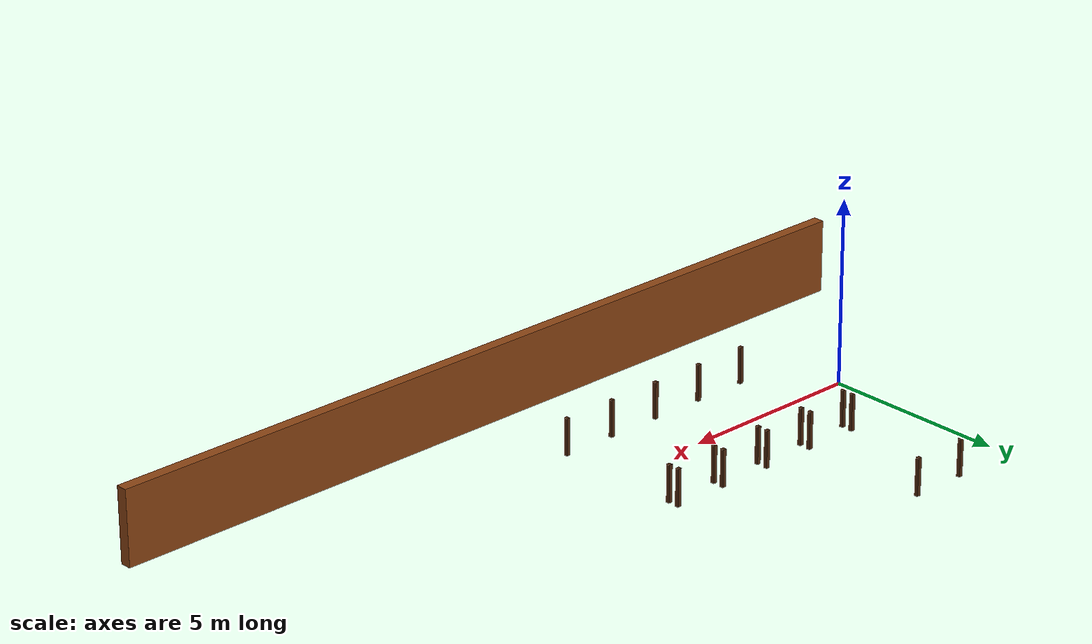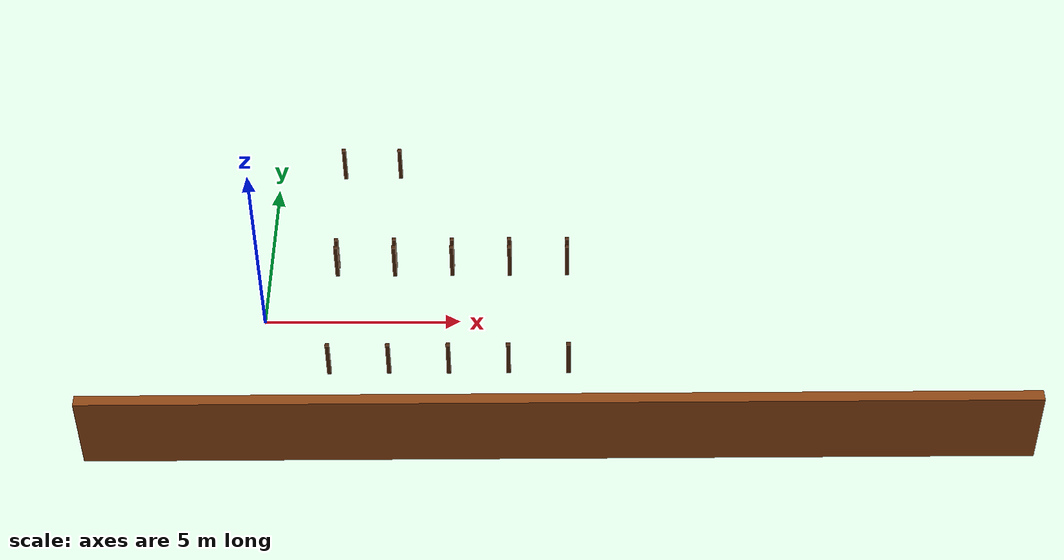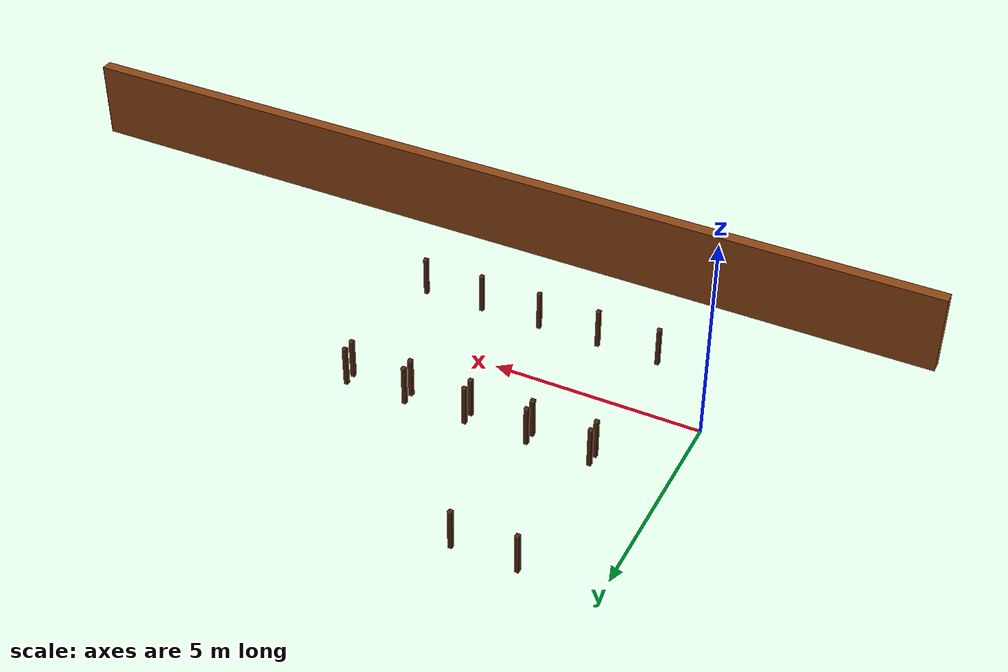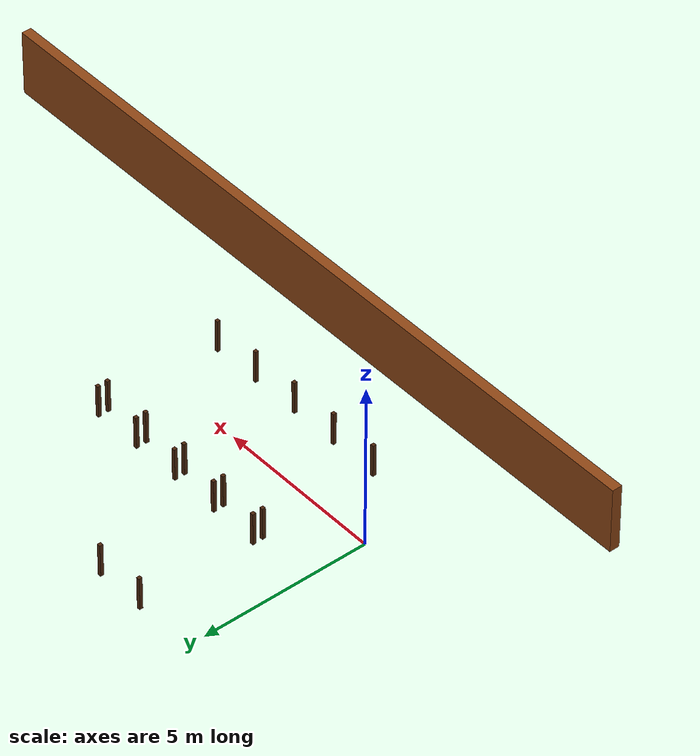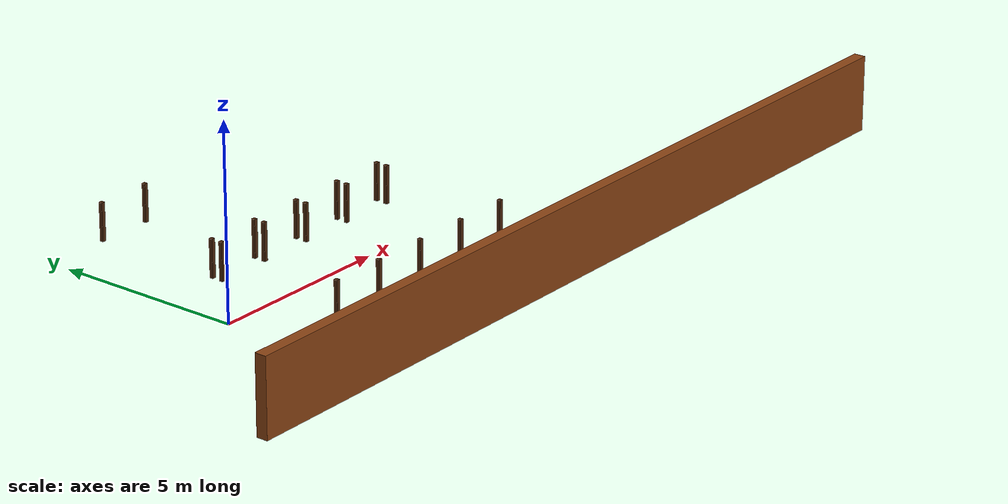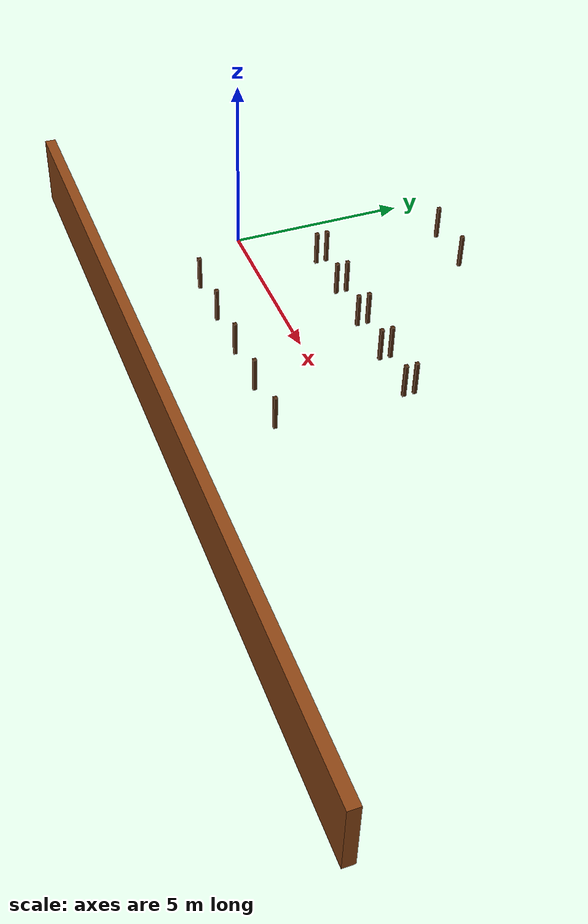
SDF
<sdf version="1.6">
 <world name="terrain_world">
  <model name="lane0_rib_l0">
   <static>true</static>
   <pose>1.7500 1.7500 0.5000 0.00000 0.00000 0.00000</pose>
   <link name="link">
    <collision name="col"><geometry><box><size>0.1000 0.1000 1.0000</size></box></geometry></collision>
    <visual name="vis">
     <geometry><box><size>0.1000 0.1000 1.0000</size></box></geometry>
     <material><ambient>0.30 0.15 0.05 1</ambient><diffuse>0.30 0.15 0.05 1</diffuse></material>
    </visual>
   </link>
  </model>
  <model name="lane0_rib_l1">
   <static>true</static>
   <pose>3.2500 1.7500 0.5000 0.00000 0.00000 0.00000</pose>
   <link name="link">
    <collision name="col"><geometry><box><size>0.1000 0.1000 1.0000</size></box></geometry></collision>
    <visual name="vis">
     <geometry><box><size>0.1000 0.1000 1.0000</size></box></geometry>
     <material><ambient>0.30 0.15 0.05 1</ambient><diffuse>0.30 0.15 0.05 1</diffuse></material>
    </visual>
   </link>
  </model>
  <model name="lane0_rib_l2">
   <static>true</static>
   <pose>4.7500 1.7500 0.5000 0.00000 0.00000 0.00000</pose>
   <link name="link">
    <collision name="col"><geometry><box><size>0.1000 0.1000 1.0000</size></box></geometry></collision>
    <visual name="vis">
     <geometry><box><size>0.1000 0.1000 1.0000</size></box></geometry>
     <material><ambient>0.30 0.15 0.05 1</ambient><diffuse>0.30 0.15 0.05 1</diffuse></material>
    </visual>
   </link>
  </model>
  <model name="lane0_rib_l3">
   <static>true</static>
   <pose>6.2500 1.7500 0.5000 0.00000 0.00000 0.00000</pose>
   <link name="link">
    <collision name="col"><geometry><box><size>0.1000 0.1000 1.0000</size></box></geometry></collision>
    <visual name="vis">
     <geometry><box><size>0.1000 0.1000 1.0000</size></box></geometry>
     <material><ambient>0.30 0.15 0.05 1</ambient><diffuse>0.30 0.15 0.05 1</diffuse></material>
    </visual>
   </link>
  </model>
  <model name="lane0_rib_l4">
   <static>true</static>
   <pose>7.7500 1.7500 0.5000 0.00000 0.00000 0.00000</pose>
   <link name="link">
    <collision name="col"><geometry><box><size>0.1000 0.1000 1.0000</size></box></geometry></collision>
    <visual name="vis">
     <geometry><box><size>0.1000 0.1000 1.0000</size></box></geometry>
     <material><ambient>0.30 0.15 0.05 1</ambient><diffuse>0.30 0.15 0.05 1</diffuse></material>
    </visual>
   </link>
  </model>
  <model name="lane0_rib_r0">
   <static>true</static>
   <pose>1.7500 -1.7500 0.5000 0.00000 0.00000 0.00000</pose>
   <link name="link">
    <collision name="col"><geometry><box><size>0.1000 0.1000 1.0000</size></box></geometry></collision>
    <visual name="vis">
     <geometry><box><size>0.1000 0.1000 1.0000</size></box></geometry>
     <material><ambient>0.30 0.15 0.05 1</ambient><diffuse>0.30 0.15 0.05 1</diffuse></material>
    </visual>
   </link>
  </model>
  <model name="lane0_rib_r1">
   <static>true</static>
   <pose>3.2500 -1.7500 0.5000 0.00000 0.00000 0.00000</pose>
   <link name="link">
    <collision name="col"><geometry><box><size>0.1000 0.1000 1.0000</size></box></geometry></collision>
    <visual name="vis">
     <geometry><box><size>0.1000 0.1000 1.0000</size></box></geometry>
     <material><ambient>0.30 0.15 0.05 1</ambient><diffuse>0.30 0.15 0.05 1</diffuse></material>
    </visual>
   </link>
  </model>
  <model name="lane0_rib_r2">
   <static>true</static>
   <pose>4.7500 -1.7500 0.5000 0.00000 0.00000 0.00000</pose>
   <link name="link">
    <collision name="col"><geometry><box><size>0.1000 0.1000 1.0000</size></box></geometry></collision>
    <visual name="vis">
     <geometry><box><size>0.1000 0.1000 1.0000</size></box></geometry>
     <material><ambient>0.30 0.15 0.05 1</ambient><diffuse>0.30 0.15 0.05 1</diffuse></material>
    </visual>
   </link>
  </model>
  <model name="lane0_rib_r3">
   <static>true</static>
   <pose>6.2500 -1.7500 0.5000 0.00000 0.00000 0.00000</pose>
   <link name="link">
    <collision name="col"><geometry><box><size>0.1000 0.1000 1.0000</size></box></geometry></collision>
    <visual name="vis">
     <geometry><box><size>0.1000 0.1000 1.0000</size></box></geometry>
     <material><ambient>0.30 0.15 0.05 1</ambient><diffuse>0.30 0.15 0.05 1</diffuse></material>
    </visual>
   </link>
  </model>
  <model name="lane0_rib_r4">
   <static>true</static>
   <pose>7.7500 -1.7500 0.5000 0.00000 0.00000 0.00000</pose>
   <link name="link">
    <collision name="col"><geometry><box><size>0.1000 0.1000 1.0000</size></box></geometry></collision>
    <visual name="vis">
     <geometry><box><size>0.1000 0.1000 1.0000</size></box></geometry>
     <material><ambient>0.30 0.15 0.05 1</ambient><diffuse>0.30 0.15 0.05 1</diffuse></material>
    </visual>
   </link>
  </model>
  <model name="lane1_rib_l0">
   <static>true</static>
   <pose>1.7500 5.5500 0.5000 0.00000 0.00000 0.00000</pose>
   <link name="link">
    <collision name="col"><geometry><box><size>0.1000 0.1000 1.0000</size></box></geometry></collision>
    <visual name="vis">
     <geometry><box><size>0.1000 0.1000 1.0000</size></box></geometry>
     <material><ambient>0.30 0.15 0.05 1</ambient><diffuse>0.30 0.15 0.05 1</diffuse></material>
    </visual>
   </link>
  </model>
  <model name="lane1_rib_l1">
   <static>true</static>
   <pose>3.2500 5.5500 0.5000 0.00000 0.00000 0.00000</pose>
   <link name="link">
    <collision name="col"><geometry><box><size>0.1000 0.1000 1.0000</size></box></geometry></collision>
    <visual name="vis">
     <geometry><box><size>0.1000 0.1000 1.0000</size></box></geometry>
     <material><ambient>0.30 0.15 0.05 1</ambient><diffuse>0.30 0.15 0.05 1</diffuse></material>
    </visual>
   </link>
  </model>
  <model name="lane1_rib_r0">
   <static>true</static>
   <pose>1.7500 2.0500 0.5000 0.00000 0.00000 0.00000</pose>
   <link name="link">
    <collision name="col"><geometry><box><size>0.1000 0.1000 1.0000</size></box></geometry></collision>
    <visual name="vis">
     <geometry><box><size>0.1000 0.1000 1.0000</size></box></geometry>
     <material><ambient>0.30 0.15 0.05 1</ambient><diffuse>0.30 0.15 0.05 1</diffuse></material>
    </visual>
   </link>
  </model>
  <model name="lane1_rib_r1">
   <static>true</static>
   <pose>3.2500 2.0500 0.5000 0.00000 0.00000 0.00000</pose>
   <link name="link">
    <collision name="col"><geometry><box><size>0.1000 0.1000 1.0000</size></box></geometry></collision>
    <visual name="vis">
     <geometry><box><size>0.1000 0.1000 1.0000</size></box></geometry>
     <material><ambient>0.30 0.15 0.05 1</ambient><diffuse>0.30 0.15 0.05 1</diffuse></material>
    </visual>
   </link>
  </model>
  <model name="lane1_rib_r2">
   <static>true</static>
   <pose>4.7500 2.0500 0.5000 0.00000 0.00000 0.00000</pose>
   <link name="link">
    <collision name="col"><geometry><box><size>0.1000 0.1000 1.0000</size></box></geometry></collision>
    <visual name="vis">
     <geometry><box><size>0.1000 0.1000 1.0000</size></box></geometry>
     <material><ambient>0.30 0.15 0.05 1</ambient><diffuse>0.30 0.15 0.05 1</diffuse></material>
    </visual>
   </link>
  </model>
  <model name="lane1_rib_r3">
   <static>true</static>
   <pose>6.2500 2.0500 0.5000 0.00000 0.00000 0.00000</pose>
   <link name="link">
    <collision name="col"><geometry><box><size>0.1000 0.1000 1.0000</size></box></geometry></collision>
    <visual name="vis">
     <geometry><box><size>0.1000 0.1000 1.0000</size></box></geometry>
     <material><ambient>0.30 0.15 0.05 1</ambient><diffuse>0.30 0.15 0.05 1</diffuse></material>
    </visual>
   </link>
  </model>
  <model name="lane1_rib_r4">
   <static>true</static>
   <pose>7.7500 2.0500 0.5000 0.00000 0.00000 0.00000</pose>
   <link name="link">
    <collision name="col"><geometry><box><size>0.1000 0.1000 1.0000</size></box></geometry></collision>
    <visual name="vis">
     <geometry><box><size>0.1000 0.1000 1.0000</size></box></geometry>
     <material><ambient>0.30 0.15 0.05 1</ambient><diffuse>0.30 0.15 0.05 1</diffuse></material>
    </visual>
   </link>
  </model>
  <model name="outer_s">
   <static>true</static>
   <pose>7.5000 -4.5000 1.0000 0.00000 0.00000 0.00000</pose>
   <link name="link">
    <collision name="col"><geometry><box><size>23.0000 0.3000 2.0000</size></box></geometry></collision>
    <visual name="vis">
     <geometry><box><size>23.0000 0.3000 2.0000</size></box></geometry>
     <material><ambient>0.55 0.27 0.08 1</ambient><diffuse>0.55 0.27 0.08 1</diffuse></material>
    </visual>
   </link>
  </model>
 </world>
</sdf>
